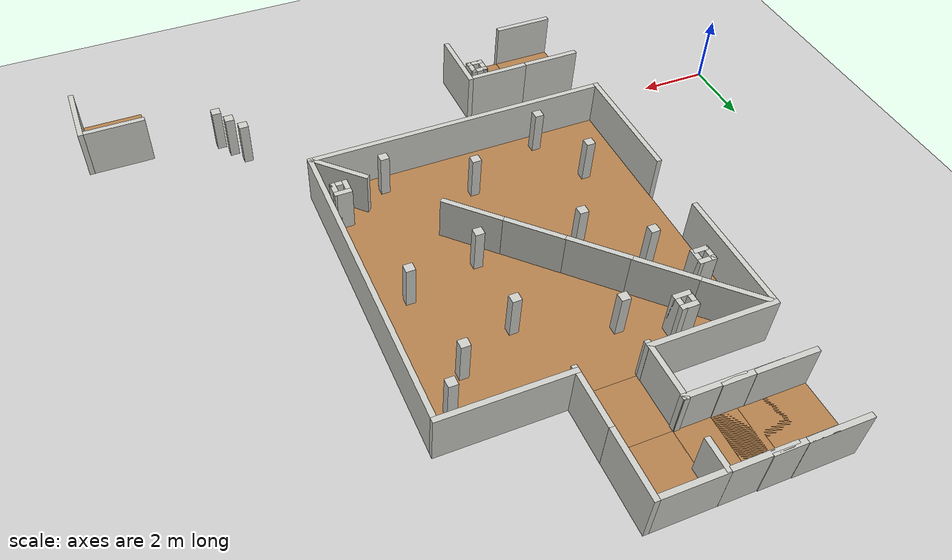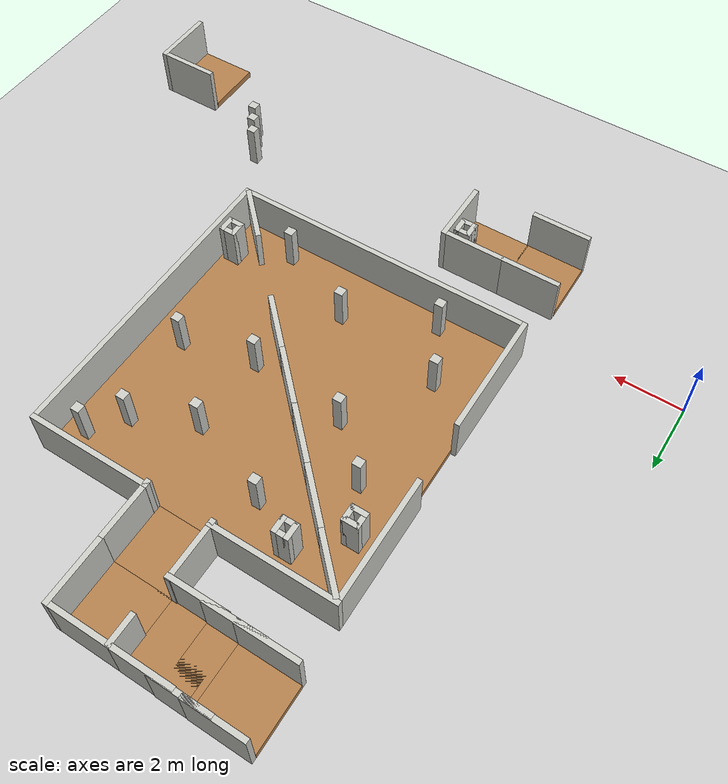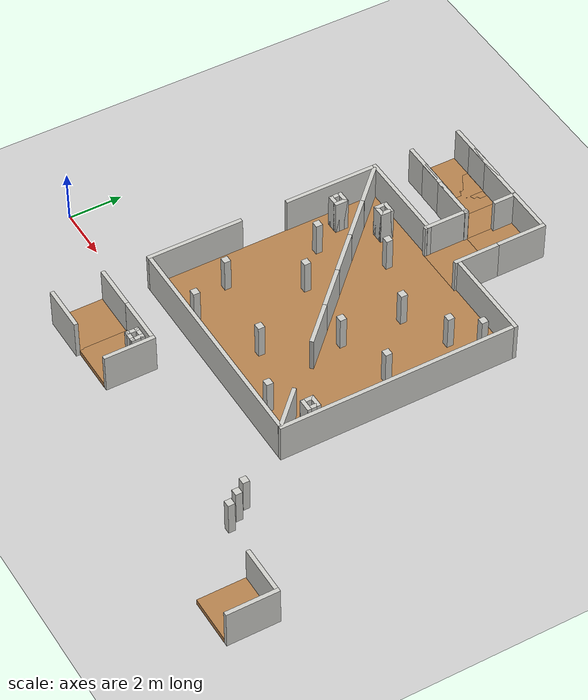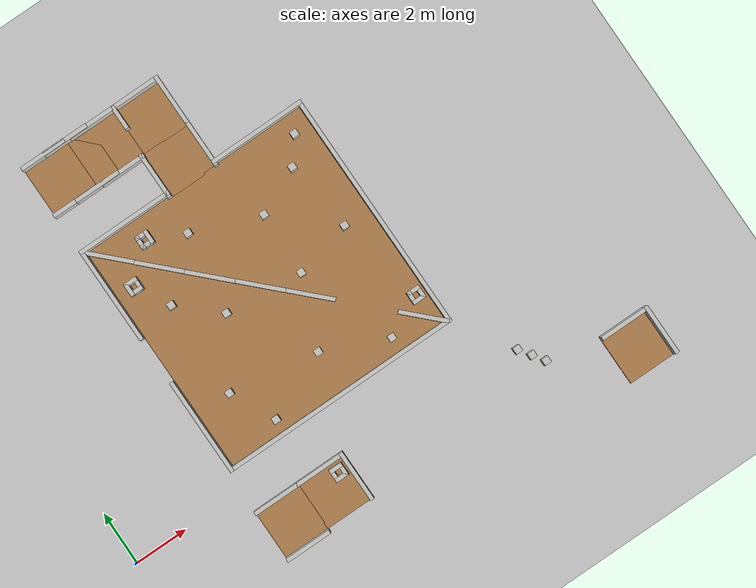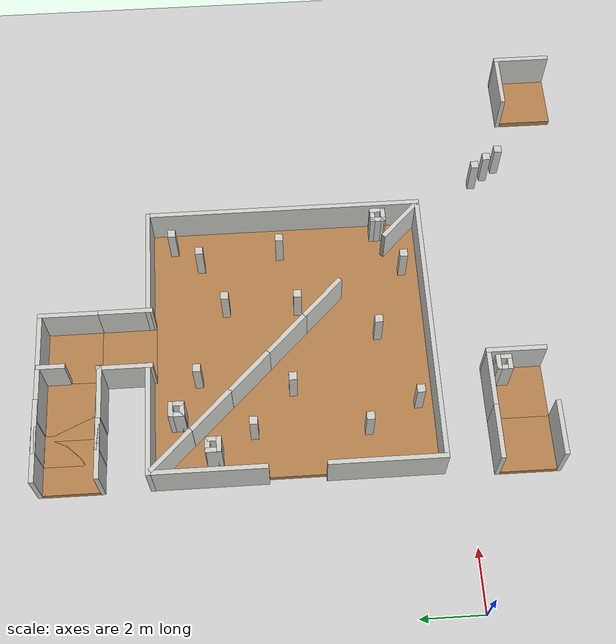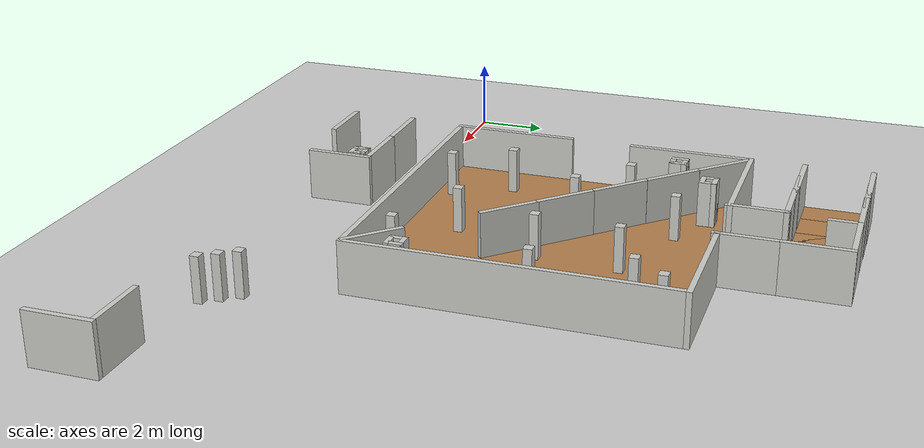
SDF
<sdf version="1.6">
 <world name="default">
  <model name="ground_plane">
   <static>1</static>
   <link name="link">
    <collision name="collision">
     <geometry><plane><normal>0 0 1</normal><size>100 100</size></plane></geometry>
     <surface><friction><ode><mu>100</mu><mu2>50</mu2></ode></friction></surface>
    </collision>
    <visual name="visual">
     <cast_shadows>0</cast_shadows>
     <geometry><plane><normal>0 0 1</normal><size>100 100</size></plane></geometry>
     <material>
      <script><uri>file://media/materials/scripts/gazebo.material</uri><name>Gazebo/Grey</name></script>
     </material>
    </visual>
   </link>
  </model>
  <model name="nerve_corner_clone_clone_clone_clone_clone_0">
   <pose>6.94042 -1.74971 0 0 0 -1.57079</pose>
   <link name="Wall_0">
    <collision name="Wall_0_Collision">
     <geometry><box><size>1.76 1.75 0.2</size></box></geometry>
     <pose>0 0 0.1 0 -0 0</pose>
    </collision>
    <visual name="Wall_0_Visual">
     <pose>0 0 0.1 0 -0 0</pose>
     <geometry><box><size>1.76 1.75 0.2</size></box></geometry>
     <material>
      <script><uri>file://media/materials/scripts/gazebo.material</uri><name>Gazebo/Wood</name></script>
      <ambient>1 0.764706 0.305882 1</ambient>
     </material>
    </visual>
    <pose>0.077507 -0.077007 0 0 -0 3.14159</pose>
   </link>
   <link name="Wall_2">
    <collision name="Wall_2_Collision">
     <geometry><box><size>1.75 0.15 1.5</size></box></geometry>
     <pose>0 0 0.75 0 -0 0</pose>
    </collision>
    <visual name="Wall_2_Visual">
     <pose>0 0 0.75 0 -0 0</pose>
     <geometry><box><size>1.75 0.15 1.5</size></box></geometry>
     <material>
      <script><uri>file://media/materials/scripts/gazebo.material</uri><name>Gazebo/CeilingTiled</name></script>
      <ambient>1 0.764706 0.305882 1</ambient>
     </material>
    </visual>
    <pose>-0.882493 -0.073007 0 0 0 -1.5708</pose>
   </link>
   <link name="Wall_4">
    <collision name="Wall_4_Collision">
     <geometry><box><size>1.91042 0.15 1.5</size></box></geometry>
     <pose>0 0 0.75 0 -0 0</pose>
    </collision>
    <visual name="Wall_4_Visual">
     <pose>0 0 0.75 0 -0 0</pose>
     <geometry><box><size>1.91042 0.15 1.5</size></box></geometry>
     <material>
      <script><uri>file://media/materials/scripts/gazebo.material</uri><name>Gazebo/CeilingTiled</name></script>
      <ambient>1 0.764706 0.305882 1</ambient>
     </material>
    </visual>
    <pose>-0.002284 0.876825 0 0 -0 3.1414</pose>
   </link>
   <static>1</static>
  </model>
  <model name="nerve_straight_clone_0_clone_0_clone_1_clone_0">
   <pose>5.14668 -1.82337 0 0 0 -1.5708</pose>
   <link name="Wall_0">
    <collision name="Wall_0_Collision">
     <geometry><box><size>1.76 1.75 0.2</size></box></geometry>
     <pose>0 0 0.1 0 -0 0</pose>
    </collision>
    <visual name="Wall_0_Visual">
     <pose>0 0 0.1 0 -0 0</pose>
     <geometry><box><size>1.76 1.75 0.2</size></box></geometry>
     <material>
      <script><uri>file://media/materials/scripts/gazebo.material</uri><name>Gazebo/Wood</name></script>
      <ambient>1 0.764706 0.305882 1</ambient>
     </material>
    </visual>
    <pose>0.005 -0.002 0 0 -0 3.14159</pose>
   </link>
   <link name="Wall_2">
    <collision name="Wall_2_Collision">
     <geometry><box><size>1.75 0.15 1.5</size></box></geometry>
     <pose>0 0 0.75 0 -0 0</pose>
    </collision>
    <visual name="Wall_2_Visual">
     <pose>0 0 0.75 0 -0 0</pose>
     <geometry><box><size>1.75 0.15 1.5</size></box></geometry>
     <material>
      <script><uri>file://media/materials/scripts/gazebo.material</uri><name>Gazebo/CeilingTiled</name></script>
      <ambient>1 0.764706 0.305882 1</ambient>
     </material>
    </visual>
    <pose>-0.955 0.002 0 0 0 -1.5708</pose>
   </link>
   <link name="Wall_4">
    <collision name="Wall_4_Collision">
     <geometry><box><size>1.75 0.15 1.5</size></box></geometry>
     <pose>0 0 0.75 0 -0 0</pose>
    </collision>
    <visual name="Wall_4_Visual">
     <pose>0 0 0.75 0 -0 0</pose>
     <geometry><box><size>1.75 0.15 1.5</size></box></geometry>
     <material>
      <script><uri>file://media/materials/scripts/gazebo.material</uri><name>Gazebo/CeilingTiled</name></script>
      <ambient>1 0.764706 0.305882 1</ambient>
     </material>
    </visual>
    <pose>0.955 0.002 0 0 0 -1.5708</pose>
   </link>
   <static>1</static>
  </model>
  <model name="nerve_corner_clone_clone_1_clone_clone">
   <pose>18.2036 -3.50554 0 0 0 -1.57079</pose>
   <link name="Wall_0">
    <collision name="Wall_0_Collision">
     <geometry><box><size>1.76 1.75 0.2</size></box></geometry>
     <pose>0 0 0.1 0 -0 0</pose>
    </collision>
    <visual name="Wall_0_Visual">
     <pose>0 0 0.1 0 -0 0</pose>
     <geometry><box><size>1.76 1.75 0.2</size></box></geometry>
     <material>
      <script><uri>file://media/materials/scripts/gazebo.material</uri><name>Gazebo/Wood</name></script>
      <ambient>1 0.764706 0.305882 1</ambient>
     </material>
    </visual>
    <pose>0.077507 -0.077007 0 0 -0 3.14159</pose>
   </link>
   <link name="Wall_2">
    <collision name="Wall_2_Collision">
     <geometry><box><size>1.75 0.15 1.5</size></box></geometry>
     <pose>0 0 0.75 0 -0 0</pose>
    </collision>
    <visual name="Wall_2_Visual">
     <pose>0 0 0.75 0 -0 0</pose>
     <geometry><box><size>1.75 0.15 1.5</size></box></geometry>
     <material>
      <script><uri>file://media/materials/scripts/gazebo.material</uri><name>Gazebo/CeilingTiled</name></script>
      <ambient>1 0.764706 0.305882 1</ambient>
     </material>
    </visual>
    <pose>-0.882493 -0.073007 0 0 0 -1.5708</pose>
   </link>
   <link name="Wall_4">
    <collision name="Wall_4_Collision">
     <geometry><box><size>1.91042 0.15 1.5</size></box></geometry>
     <pose>0 0 0.75 0 -0 0</pose>
    </collision>
    <visual name="Wall_4_Visual">
     <pose>0 0 0.75 0 -0 0</pose>
     <geometry><box><size>1.91042 0.15 1.5</size></box></geometry>
     <material>
      <script><uri>file://media/materials/scripts/gazebo.material</uri><name>Gazebo/CeilingTiled</name></script>
      <ambient>1 0.764706 0.305882 1</ambient>
     </material>
    </visual>
    <pose>-0.002284 0.876825 0 0 -0 3.1414</pose>
   </link>
   <static>1</static>
  </model>
  <model name="nerve_room_5x5ARENA_right_clone">
   <pose>8.91265 5.25697 0 0 0 -1.57</pose>
   <link name="Wall_11">
    <collision name="Wall_11_Collision">
     <geometry><box><size>8.75 0.15 1.5</size></box></geometry>
     <pose>0 0 0.75 0 -0 0</pose>
    </collision>
    <visual name="Wall_11_Visual">
     <pose>0 0 0.75 0 -0 0</pose>
     <geometry><box><size>8.75 0.15 1.5</size></box></geometry>
     <material>
      <script><uri>file://media/materials/scripts/gazebo.material</uri><name>Gazebo/CeilingTiled</name></script>
      <ambient>1 0.764706 0.305882 1</ambient>
     </material>
    </visual>
    <pose>4.44912 -0.000431 0 0 0 -1.5708</pose>
   </link>
   <link name="Wall_13">
    <collision name="Wall_13_Collision">
     <geometry><box><size>3.65 0.15 1.5</size></box></geometry>
     <pose>0 0 0.75 0 -0 0</pose>
    </collision>
    <visual name="Wall_13_Visual">
     <pose>0 0 0.75 0 -0 0</pose>
     <geometry><box><size>3.65 0.15 1.5</size></box></geometry>
     <material>
      <script><uri>file://media/materials/scripts/gazebo.material</uri><name>Gazebo/CeilingTiled</name></script>
      <ambient>1 0.764706 0.305882 1</ambient>
     </material>
    </visual>
    <pose>-4.44961 2.70076 0 0 0 -1.5708</pose>
   </link>
   <link name="Wall_15">
    <collision name="Wall_15_Collision">
     <geometry><box><size>3.65 0.15 1.5</size></box></geometry>
     <pose>0 0 0.75 0 -0 0</pose>
    </collision>
    <visual name="Wall_15_Visual">
     <pose>0 0 0.75 0 -0 0</pose>
     <geometry><box><size>3.65 0.15 1.5</size></box></geometry>
     <material>
      <script><uri>file://media/materials/scripts/gazebo.material</uri><name>Gazebo/CeilingTiled</name></script>
      <ambient>1 0.764706 0.305882 1</ambient>
     </material>
    </visual>
    <pose>2.69961 -4.45076 0 0 -0 0</pose>
   </link>
   <link name="Wall_17">
    <collision name="Wall_17_Collision">
     <geometry><box><size>8.90028 0.15 1.5</size></box></geometry>
     <pose>0 0 0.75 0 -0 0</pose>
    </collision>
    <visual name="Wall_17_Visual">
     <pose>0 0 0.75 0 -0 0</pose>
     <geometry><box><size>8.90028 0.15 1.5</size></box></geometry>
     <material>
      <script><uri>file://media/materials/scripts/gazebo.material</uri><name>Gazebo/CeilingTiled</name></script>
      <ambient>1 0.764706 0.305882 1</ambient>
     </material>
    </visual>
    <pose>0.074346 4.45022 0 0 0 -6.5e-05</pose>
   </link>
   <link name="Wall_21">
    <collision name="Wall_21_Collision">
     <geometry><box><size>3.5 0.15 1.5</size></box></geometry>
     <pose>0 0 0.75 0 -0 0</pose>
    </collision>
    <visual name="Wall_21_Visual">
     <pose>0 0 0.75 0 -0 0</pose>
     <geometry><box><size>3.5 0.15 1.5</size></box></geometry>
     <material>
      <script><uri>file://media/materials/scripts/gazebo.material</uri><name>Gazebo/CeilingTiled</name></script>
      <ambient>1 0.764706 0.305882 1</ambient>
     </material>
    </visual>
    <pose>-2.62383 -4.4498 0 0 -0 0</pose>
   </link>
   <link name="Wall_25">
    <collision name="Wall_25_Collision">
     <geometry><box><size>3.65 0.15 1.5</size></box></geometry>
     <pose>0 0 0.75 0 -0 0</pose>
    </collision>
    <visual name="Wall_25_Visual">
     <pose>0 0 0.75 0 -0 0</pose>
     <geometry><box><size>3.65 0.15 1.5</size></box></geometry>
     <material>
      <script><uri>file://media/materials/scripts/gazebo.material</uri><name>Gazebo/CeilingTiled</name></script>
      <ambient>1 0.764706 0.305882 1</ambient>
     </material>
    </visual>
    <pose>-4.44941 -2.70044 0 0 0 -1.5708</pose>
   </link>
   <link name="Wall_6">
    <collision name="Wall_6_Collision">
     <geometry><box><size>8.76 8.75 0.2</size></box></geometry>
     <pose>0 0 0.1 0 -0 0</pose>
    </collision>
    <visual name="Wall_6_Visual">
     <pose>0 0 0.1 0 -0 0</pose>
     <geometry><box><size>8.76 8.75 0.2</size></box></geometry>
     <material>
      <script><uri>file://media/materials/scripts/gazebo.material</uri><name>Gazebo/Wood</name></script>
      <ambient>1 0.764706 0.305882 1</ambient>
     </material>
    </visual>
    <pose>0.000485 -0.004173 0 0 -0 1.5708</pose>
   </link>
   <static>1</static>
  </model>
  <model name="nerve_straight_clone_0_clone_0_clone_clone_0">
   <pose>5.24117 12.19 0 0 0 -1.5708</pose>
   <link name="Wall_0">
    <collision name="Wall_0_Collision">
     <geometry><box><size>1.76 1.75 0.2</size></box></geometry>
     <pose>0 0 0.1 0 -0 0</pose>
    </collision>
    <visual name="Wall_0_Visual">
     <pose>0 0 0.1 0 -0 0</pose>
     <geometry><box><size>1.76 1.75 0.2</size></box></geometry>
     <material>
      <script><uri>file://media/materials/scripts/gazebo.material</uri><name>Gazebo/Wood</name></script>
      <ambient>1 0.764706 0.305882 1</ambient>
     </material>
    </visual>
    <pose>0.005 -0.002 0 0 -0 3.14159</pose>
   </link>
   <link name="Wall_2">
    <collision name="Wall_2_Collision">
     <geometry><box><size>1.75 0.15 1.5</size></box></geometry>
     <pose>0 0 0.75 0 -0 0</pose>
    </collision>
    <visual name="Wall_2_Visual">
     <pose>0 0 0.75 0 -0 0</pose>
     <geometry><box><size>1.75 0.15 1.5</size></box></geometry>
     <material>
      <script><uri>file://media/materials/scripts/gazebo.material</uri><name>Gazebo/CeilingTiled</name></script>
      <ambient>1 0.764706 0.305882 1</ambient>
     </material>
    </visual>
    <pose>-0.955 0.002 0 0 0 -1.5708</pose>
   </link>
   <link name="Wall_4">
    <collision name="Wall_4_Collision">
     <geometry><box><size>1.75 0.15 1.5</size></box></geometry>
     <pose>0 0 0.75 0 -0 0</pose>
    </collision>
    <visual name="Wall_4_Visual">
     <pose>0 0 0.75 0 -0 0</pose>
     <geometry><box><size>1.75 0.15 1.5</size></box></geometry>
     <material>
      <script><uri>file://media/materials/scripts/gazebo.material</uri><name>Gazebo/CeilingTiled</name></script>
      <ambient>1 0.764706 0.305882 1</ambient>
     </material>
    </visual>
    <pose>0.955 0.002 0 0 0 -1.5708</pose>
   </link>
   <static>1</static>
  </model>
  <model name="nerve_straight_clone_0_clone_0_clone_clone_0_clone">
   <pose>7.16906 12.1637 0 0 0 -1.5708</pose>
   <link name="Wall_0">
    <collision name="Wall_0_Collision">
     <geometry><box><size>1.76 1.75 0.2</size></box></geometry>
     <pose>0 0 0.1 0 -0 0</pose>
    </collision>
    <visual name="Wall_0_Visual">
     <pose>0 0 0.1 0 -0 0</pose>
     <geometry><box><size>1.76 1.75 0.2</size></box></geometry>
     <material>
      <script><uri>file://media/materials/scripts/gazebo.material</uri><name>Gazebo/Wood</name></script>
      <ambient>1 0.764706 0.305882 1</ambient>
     </material>
    </visual>
    <pose>0.005 -0.002 0 0 -0 3.14159</pose>
   </link>
   <link name="Wall_2">
    <collision name="Wall_2_Collision">
     <geometry><box><size>1.75 0.15 1.5</size></box></geometry>
     <pose>0 0 0.75 0 -0 0</pose>
    </collision>
    <visual name="Wall_2_Visual">
     <pose>0 0 0.75 0 -0 0</pose>
     <geometry><box><size>1.75 0.15 1.5</size></box></geometry>
     <material>
      <script><uri>file://media/materials/scripts/gazebo.material</uri><name>Gazebo/CeilingTiled</name></script>
      <ambient>1 0.764706 0.305882 1</ambient>
     </material>
    </visual>
    <pose>-0.955 0.002 0 0 0 -1.5708</pose>
   </link>
   <link name="Wall_4">
    <collision name="Wall_4_Collision">
     <geometry><box><size>1.75 0.15 1.5</size></box></geometry>
     <pose>0 0 0.75 0 -0 0</pose>
    </collision>
    <visual name="Wall_4_Visual">
     <pose>0 0 0.75 0 -0 0</pose>
     <geometry><box><size>1.75 0.15 1.5</size></box></geometry>
     <material>
      <script><uri>file://media/materials/scripts/gazebo.material</uri><name>Gazebo/CeilingTiled</name></script>
      <ambient>1 0.764706 0.305882 1</ambient>
     </material>
    </visual>
    <pose>0.955 0.002 0 0 0 -1.5708</pose>
   </link>
   <static>1</static>
  </model>
  <model name="nerve_corner_clone_0_clone_clone_0_clone">
   <pose>8.98251 12.2346 0 0 0 -1.5708</pose>
   <link name="Wall_0">
    <collision name="Wall_0_Collision">
     <geometry><box><size>1.76 1.75 0.2</size></box></geometry>
     <pose>0 0 0.1 0 -0 0</pose>
    </collision>
    <visual name="Wall_0_Visual">
     <pose>0 0 0.1 0 -0 0</pose>
     <geometry><box><size>1.76 1.75 0.2</size></box></geometry>
     <material>
      <script><uri>file://media/materials/scripts/gazebo.material</uri><name>Gazebo/Wood</name></script>
      <ambient>1 0.764706 0.305882 1</ambient>
     </material>
    </visual>
    <pose>0.077507 -0.077007 0 0 -0 3.14159</pose>
   </link>
   <link name="Wall_2">
    <collision name="Wall_2_Collision">
     <geometry><box><size>1.75 0.15 1.5</size></box></geometry>
     <pose>0 0 0.75 0 -0 0</pose>
    </collision>
    <visual name="Wall_2_Visual">
     <pose>0 0 0.75 0 -0 0</pose>
     <geometry><box><size>1.75 0.15 1.5</size></box></geometry>
     <material>
      <script><uri>file://media/materials/scripts/gazebo.material</uri><name>Gazebo/CeilingTiled</name></script>
      <ambient>1 0.764706 0.305882 1</ambient>
     </material>
    </visual>
    <pose>-0.882493 -0.073007 0 0 0 -1.5708</pose>
   </link>
   <link name="Wall_4">
    <collision name="Wall_4_Collision">
     <geometry><box><size>1.91042 0.15 1.5</size></box></geometry>
     <pose>0 0 0.75 0 -0 0</pose>
    </collision>
    <visual name="Wall_4_Visual">
     <pose>0 0 0.75 0 -0 0</pose>
     <geometry><box><size>1.91042 0.15 1.5</size></box></geometry>
     <material>
      <script><uri>file://media/materials/scripts/gazebo.material</uri><name>Gazebo/CeilingTiled</name></script>
      <ambient>1 0.764706 0.305882 1</ambient>
     </material>
    </visual>
    <pose>-0.002284 0.876825 0 0 -0 3.1414</pose>
   </link>
   <static>1</static>
  </model>
  <model name="nerve_straight_clone_0_clone_0_clone_clone_0_clone_clone">
   <pose>8.90752 10.4299 0 0 -0 3.14159</pose>
   <link name="Wall_0">
    <collision name="Wall_0_Collision">
     <geometry><box><size>1.76 1.75 0.2</size></box></geometry>
     <pose>0 0 0.1 0 -0 0</pose>
    </collision>
    <visual name="Wall_0_Visual">
     <pose>0 0 0.1 0 -0 0</pose>
     <geometry><box><size>1.76 1.75 0.2</size></box></geometry>
     <material>
      <script><uri>file://media/materials/scripts/gazebo.material</uri><name>Gazebo/Wood</name></script>
      <ambient>1 0.764706 0.305882 1</ambient>
     </material>
    </visual>
    <pose>0.005 -0.002 0 0 -0 3.14159</pose>
   </link>
   <link name="Wall_2">
    <collision name="Wall_2_Collision">
     <geometry><box><size>1.75 0.15 1.5</size></box></geometry>
     <pose>0 0 0.75 0 -0 0</pose>
    </collision>
    <visual name="Wall_2_Visual">
     <pose>0 0 0.75 0 -0 0</pose>
     <geometry><box><size>1.75 0.15 1.5</size></box></geometry>
     <material>
      <script><uri>file://media/materials/scripts/gazebo.material</uri><name>Gazebo/CeilingTiled</name></script>
      <ambient>1 0.764706 0.305882 1</ambient>
     </material>
    </visual>
    <pose>-0.955 0.002 0 0 0 -1.5708</pose>
   </link>
   <link name="Wall_4">
    <collision name="Wall_4_Collision">
     <geometry><box><size>1.75 0.15 1.5</size></box></geometry>
     <pose>0 0 0.75 0 -0 0</pose>
    </collision>
    <visual name="Wall_4_Visual">
     <pose>0 0 0.75 0 -0 0</pose>
     <geometry><box><size>1.75 0.15 1.5</size></box></geometry>
     <material>
      <script><uri>file://media/materials/scripts/gazebo.material</uri><name>Gazebo/CeilingTiled</name></script>
      <ambient>1 0.764706 0.305882 1</ambient>
     </material>
    </visual>
    <pose>0.955 0.002 0 0 0 -1.5708</pose>
   </link>
   <static>1</static>
  </model>
  <model name="nerve_straight_clone_0_clone_0_clone_clone_0_clone_0">
   <pose>6.14334 12.1816 0 0 0 -1.5708</pose>
   <link name="Wall_0">
    <collision name="Wall_0_Collision">
     <geometry><box><size>1.76 1.75 0.2</size></box></geometry>
     <pose>0 0 0.1 0 -0 0</pose>
    </collision>
    <visual name="Wall_0_Visual">
     <pose>0 0 0.1 0 -0 0</pose>
     <geometry><box><size>1.76 1.75 0.2</size></box></geometry>
     <material>
      <script><uri>file://media/materials/scripts/gazebo.material</uri><name>Gazebo/Wood</name></script>
      <ambient>1 0.764706 0.305882 1</ambient>
     </material>
    </visual>
    <pose>0.005 -0.002 0 0 -0 3.14159</pose>
   </link>
   <link name="Wall_2">
    <collision name="Wall_2_Collision">
     <geometry><box><size>1.75 0.15 1.5</size></box></geometry>
     <pose>0 0 0.75 0 -0 0</pose>
    </collision>
    <visual name="Wall_2_Visual">
     <pose>0 0 0.75 0 -0 0</pose>
     <geometry><box><size>1.75 0.15 1.5</size></box></geometry>
     <material>
      <script><uri>file://media/materials/scripts/gazebo.material</uri><name>Gazebo/CeilingTiled</name></script>
      <ambient>1 0.764706 0.305882 1</ambient>
     </material>
    </visual>
    <pose>-0.955 0.002 0 0 0 -1.5708</pose>
   </link>
   <link name="Wall_4">
    <collision name="Wall_4_Collision">
     <geometry><box><size>1.75 0.15 1.5</size></box></geometry>
     <pose>0 0 0.75 0 -0 0</pose>
    </collision>
    <visual name="Wall_4_Visual">
     <pose>0 0 0.75 0 -0 0</pose>
     <geometry><box><size>1.75 0.15 1.5</size></box></geometry>
     <material>
      <script><uri>file://media/materials/scripts/gazebo.material</uri><name>Gazebo/CeilingTiled</name></script>
      <ambient>1 0.764706 0.305882 1</ambient>
     </material>
    </visual>
    <pose>0.955 0.002 0 0 0 -1.5708</pose>
   </link>
   <static>1</static>
  </model>
  <model name="nerve_obs_wall_full">
   <pose>5.12733 9.03491 0.2 0 0 -0.785398</pose>
   <link name="Wall_21">
    <collision name="Wall_21_Collision">
     <geometry><box><size>1.75 0.15 1.3</size></box></geometry>
     <pose>0 0 0.65 0 -0 0</pose>
    </collision>
    <visual name="Wall_21_Visual">
     <pose>0 0 0.65 0 -0 0</pose>
     <geometry><box><size>1.75 0.15 1.3</size></box></geometry>
     <material>
      <script><uri>file://media/materials/scripts/gazebo.material</uri><name>Gazebo/CeilingTiled</name></script>
      <ambient>1 0.764706 0.305882 1</ambient>
     </material>
    </visual>
   </link>
   <static>1</static>
  </model>
  <model name="nerve_obs_wall_full_clone">
   <pose>6.34618 7.80728 0.2 0 0 -0.785398</pose>
   <link name="Wall_21">
    <collision name="Wall_21_Collision">
     <geometry><box><size>1.75 0.15 1.3</size></box></geometry>
     <pose>0 0 0.65 0 -0 0</pose>
    </collision>
    <visual name="Wall_21_Visual">
     <pose>0 0 0.65 0 -0 0</pose>
     <geometry><box><size>1.75 0.15 1.3</size></box></geometry>
     <material>
      <script><uri>file://media/materials/scripts/gazebo.material</uri><name>Gazebo/CeilingTiled</name></script>
      <ambient>1 0.764706 0.305882 1</ambient>
     </material>
    </visual>
   </link>
   <static>1</static>
  </model>
  <model name="nerve_obs_wall_full_clone_0">
   <pose>7.55858 6.58944 0.2 0 0 -0.785398</pose>
   <link name="Wall_21">
    <collision name="Wall_21_Collision">
     <geometry><box><size>1.75 0.15 1.3</size></box></geometry>
     <pose>0 0 0.65 0 -0 0</pose>
    </collision>
    <visual name="Wall_21_Visual">
     <pose>0 0 0.65 0 -0 0</pose>
     <geometry><box><size>1.75 0.15 1.3</size></box></geometry>
     <material>
      <script><uri>file://media/materials/scripts/gazebo.material</uri><name>Gazebo/CeilingTiled</name></script>
      <ambient>1 0.764706 0.305882 1</ambient>
     </material>
    </visual>
   </link>
   <static>1</static>
  </model>
  <model name="nerve_obs_wall_full_clone_1">
   <pose>8.78382 5.36977 0.2 0 0 -0.785398</pose>
   <link name="Wall_21">
    <collision name="Wall_21_Collision">
     <geometry><box><size>1.75 0.15 1.3</size></box></geometry>
     <pose>0 0 0.65 0 -0 0</pose>
    </collision>
    <visual name="Wall_21_Visual">
     <pose>0 0 0.65 0 -0 0</pose>
     <geometry><box><size>1.75 0.15 1.3</size></box></geometry>
     <material>
      <script><uri>file://media/materials/scripts/gazebo.material</uri><name>Gazebo/CeilingTiled</name></script>
      <ambient>1 0.764706 0.305882 1</ambient>
     </material>
    </visual>
   </link>
   <static>1</static>
  </model>
  <model name="nerve_obs_wall_full_clone_2">
   <pose>9.99325 4.16584 0.2 0 0 -0.785398</pose>
   <link name="Wall_21">
    <collision name="Wall_21_Collision">
     <geometry><box><size>1.75 0.15 1.3</size></box></geometry>
     <pose>0 0 0.65 0 -0 0</pose>
    </collision>
    <visual name="Wall_21_Visual">
     <pose>0 0 0.65 0 -0 0</pose>
     <geometry><box><size>1.75 0.15 1.3</size></box></geometry>
     <material>
      <script><uri>file://media/materials/scripts/gazebo.material</uri><name>Gazebo/CeilingTiled</name></script>
      <ambient>1 0.764706 0.305882 1</ambient>
     </material>
    </visual>
   </link>
   <static>1</static>
  </model>
  <model name="nerve_obs_wall_full_clone_3">
   <pose>12.7303 1.40382 0.2 0 0 -0.785398</pose>
   <link name="Wall_21">
    <collision name="Wall_21_Collision">
     <geometry><box><size>1.75 0.15 1.3</size></box></geometry>
     <pose>0 0 0.65 0 -0 0</pose>
    </collision>
    <visual name="Wall_21_Visual">
     <pose>0 0 0.65 0 -0 0</pose>
     <geometry><box><size>1.75 0.15 1.3</size></box></geometry>
     <material>
      <script><uri>file://media/materials/scripts/gazebo.material</uri><name>Gazebo/CeilingTiled</name></script>
      <ambient>1 0.764706 0.305882 1</ambient>
     </material>
    </visual>
   </link>
   <static>1</static>
  </model>
  <model name="nerve_obs_squarepillar_large_clone_33">
   <pose>5.24045 7.76111 0.2 0 -0 0</pose>
   <link name="Wall_31">
    <collision name="Wall_31_Collision">
     <geometry><box><size>0.5 0.15 1.3</size></box></geometry>
     <pose>0 0 0.65 0 -0 0</pose>
    </collision>
    <visual name="Wall_31_Visual">
     <pose>0 0 0.65 0 -0 0</pose>
     <geometry><box><size>0.5 0.15 1.3</size></box></geometry>
     <material>
      <script><uri>file://media/materials/scripts/gazebo.material</uri><name>Gazebo/CeilingTiled</name></script>
      <ambient>1 0.764706 0.305882 1</ambient>
     </material>
    </visual>
    <pose>-0.175 0 0 0 0 -1.5708</pose>
   </link>
   <link name="Wall_32">
    <collision name="Wall_32_Collision">
     <geometry><box><size>0.5 0.15 1.3</size></box></geometry>
     <pose>0 0 0.65 0 -0 0</pose>
    </collision>
    <visual name="Wall_32_Visual">
     <pose>0 0 0.65 0 -0 0</pose>
     <geometry><box><size>0.5 0.15 1.3</size></box></geometry>
     <material>
      <script><uri>file://media/materials/scripts/gazebo.material</uri><name>Gazebo/CeilingTiled</name></script>
      <ambient>1 0.764706 0.305882 1</ambient>
     </material>
    </visual>
    <pose>0 -0.175 0 0 -0 0</pose>
   </link>
   <link name="Wall_33">
    <collision name="Wall_33_Collision">
     <geometry><box><size>0.5 0.15 1.3</size></box></geometry>
     <pose>0 0 0.65 0 -0 0</pose>
    </collision>
    <visual name="Wall_33_Visual">
     <pose>0 0 0.65 0 -0 0</pose>
     <geometry><box><size>0.5 0.15 1.3</size></box></geometry>
     <material>
      <script><uri>file://media/materials/scripts/gazebo.material</uri><name>Gazebo/CeilingTiled</name></script>
      <ambient>1 0.764706 0.305882 1</ambient>
     </material>
    </visual>
    <pose>0.175 0 0 0 -0 1.5708</pose>
   </link>
   <link name="Wall_34">
    <collision name="Wall_34_Collision">
     <geometry><box><size>0.5 0.15 1.3</size></box></geometry>
     <pose>0 0 0.65 0 -0 0</pose>
    </collision>
    <visual name="Wall_34_Visual">
     <pose>0 0 0.65 0 -0 0</pose>
     <geometry><box><size>0.5 0.15 1.3</size></box></geometry>
     <material>
      <script><uri>file://media/materials/scripts/gazebo.material</uri><name>Gazebo/CeilingTiled</name></script>
      <ambient>1 0.764706 0.305882 1</ambient>
     </material>
    </visual>
    <pose>0 0.175 0 0 -0 3.14159</pose>
   </link>
   <static>1</static>
  </model>
  <model name="nerve_obs_squarepillar_large_clone_34">
   <pose>6.44236 8.85207 0.2 0 -0 0</pose>
   <link name="Wall_31">
    <collision name="Wall_31_Collision">
     <geometry><box><size>0.5 0.15 1.3</size></box></geometry>
     <pose>0 0 0.65 0 -0 0</pose>
    </collision>
    <visual name="Wall_31_Visual">
     <pose>0 0 0.65 0 -0 0</pose>
     <geometry><box><size>0.5 0.15 1.3</size></box></geometry>
     <material>
      <script><uri>file://media/materials/scripts/gazebo.material</uri><name>Gazebo/CeilingTiled</name></script>
      <ambient>1 0.764706 0.305882 1</ambient>
     </material>
    </visual>
    <pose>-0.175 0 0 0 0 -1.5708</pose>
   </link>
   <link name="Wall_32">
    <collision name="Wall_32_Collision">
     <geometry><box><size>0.5 0.15 1.3</size></box></geometry>
     <pose>0 0 0.65 0 -0 0</pose>
    </collision>
    <visual name="Wall_32_Visual">
     <pose>0 0 0.65 0 -0 0</pose>
     <geometry><box><size>0.5 0.15 1.3</size></box></geometry>
     <material>
      <script><uri>file://media/materials/scripts/gazebo.material</uri><name>Gazebo/CeilingTiled</name></script>
      <ambient>1 0.764706 0.305882 1</ambient>
     </material>
    </visual>
    <pose>0 -0.175 0 0 -0 0</pose>
   </link>
   <link name="Wall_33">
    <collision name="Wall_33_Collision">
     <geometry><box><size>0.5 0.15 1.3</size></box></geometry>
     <pose>0 0 0.65 0 -0 0</pose>
    </collision>
    <visual name="Wall_33_Visual">
     <pose>0 0 0.65 0 -0 0</pose>
     <geometry><box><size>0.5 0.15 1.3</size></box></geometry>
     <material>
      <script><uri>file://media/materials/scripts/gazebo.material</uri><name>Gazebo/CeilingTiled</name></script>
      <ambient>1 0.764706 0.305882 1</ambient>
     </material>
    </visual>
    <pose>0.175 0 0 0 -0 1.5708</pose>
   </link>
   <link name="Wall_34">
    <collision name="Wall_34_Collision">
     <geometry><box><size>0.5 0.15 1.3</size></box></geometry>
     <pose>0 0 0.65 0 -0 0</pose>
    </collision>
    <visual name="Wall_34_Visual">
     <pose>0 0 0.65 0 -0 0</pose>
     <geometry><box><size>0.5 0.15 1.3</size></box></geometry>
     <material>
      <script><uri>file://media/materials/scripts/gazebo.material</uri><name>Gazebo/CeilingTiled</name></script>
      <ambient>1 0.764706 0.305882 1</ambient>
     </material>
    </visual>
    <pose>0 0.175 0 0 -0 3.14159</pose>
   </link>
   <static>1</static>
  </model>
  <model name="nerve_obs_squarepillar_large_clone_40">
   <pose>7.39521 -1.31454 0.2 0 -0 0</pose>
   <link name="Wall_31">
    <collision name="Wall_31_Collision">
     <geometry><box><size>0.5 0.15 1.3</size></box></geometry>
     <pose>0 0 0.65 0 -0 0</pose>
    </collision>
    <visual name="Wall_31_Visual">
     <pose>0 0 0.65 0 -0 0</pose>
     <geometry><box><size>0.5 0.15 1.3</size></box></geometry>
     <material>
      <script><uri>file://media/materials/scripts/gazebo.material</uri><name>Gazebo/CeilingTiled</name></script>
      <ambient>1 0.764706 0.305882 1</ambient>
     </material>
    </visual>
    <pose>-0.175 0 0 0 0 -1.5708</pose>
   </link>
   <link name="Wall_32">
    <collision name="Wall_32_Collision">
     <geometry><box><size>0.5 0.15 1.3</size></box></geometry>
     <pose>0 0 0.65 0 -0 0</pose>
    </collision>
    <visual name="Wall_32_Visual">
     <pose>0 0 0.65 0 -0 0</pose>
     <geometry><box><size>0.5 0.15 1.3</size></box></geometry>
     <material>
      <script><uri>file://media/materials/scripts/gazebo.material</uri><name>Gazebo/CeilingTiled</name></script>
      <ambient>1 0.764706 0.305882 1</ambient>
     </material>
    </visual>
    <pose>0 -0.175 0 0 -0 0</pose>
   </link>
   <link name="Wall_33">
    <collision name="Wall_33_Collision">
     <geometry><box><size>0.5 0.15 1.3</size></box></geometry>
     <pose>0 0 0.65 0 -0 0</pose>
    </collision>
    <visual name="Wall_33_Visual">
     <pose>0 0 0.65 0 -0 0</pose>
     <geometry><box><size>0.5 0.15 1.3</size></box></geometry>
     <material>
      <script><uri>file://media/materials/scripts/gazebo.material</uri><name>Gazebo/CeilingTiled</name></script>
      <ambient>1 0.764706 0.305882 1</ambient>
     </material>
    </visual>
    <pose>0.175 0 0 0 -0 1.5708</pose>
   </link>
   <link name="Wall_34">
    <collision name="Wall_34_Collision">
     <geometry><box><size>0.5 0.15 1.3</size></box></geometry>
     <pose>0 0 0.65 0 -0 0</pose>
    </collision>
    <visual name="Wall_34_Visual">
     <pose>0 0 0.65 0 -0 0</pose>
     <geometry><box><size>0.5 0.15 1.3</size></box></geometry>
     <material>
      <script><uri>file://media/materials/scripts/gazebo.material</uri><name>Gazebo/CeilingTiled</name></script>
      <ambient>1 0.764706 0.305882 1</ambient>
     </material>
    </visual>
    <pose>0 0.175 0 0 -0 3.14159</pose>
   </link>
   <static>1</static>
  </model>
  <model name="nerve_obs_squarepillar_large_clone_43">
   <pose>12.9334 2.14275 0.2 0 -0 0</pose>
   <link name="Wall_31">
    <collision name="Wall_31_Collision">
     <geometry><box><size>0.5 0.15 1.3</size></box></geometry>
     <pose>0 0 0.65 0 -0 0</pose>
    </collision>
    <visual name="Wall_31_Visual">
     <pose>0 0 0.65 0 -0 0</pose>
     <geometry><box><size>0.5 0.15 1.3</size></box></geometry>
     <material>
      <script><uri>file://media/materials/scripts/gazebo.material</uri><name>Gazebo/CeilingTiled</name></script>
      <ambient>1 0.764706 0.305882 1</ambient>
     </material>
    </visual>
    <pose>-0.175 0 0 0 0 -1.5708</pose>
   </link>
   <link name="Wall_32">
    <collision name="Wall_32_Collision">
     <geometry><box><size>0.5 0.15 1.3</size></box></geometry>
     <pose>0 0 0.65 0 -0 0</pose>
    </collision>
    <visual name="Wall_32_Visual">
     <pose>0 0 0.65 0 -0 0</pose>
     <geometry><box><size>0.5 0.15 1.3</size></box></geometry>
     <material>
      <script><uri>file://media/materials/scripts/gazebo.material</uri><name>Gazebo/CeilingTiled</name></script>
      <ambient>1 0.764706 0.305882 1</ambient>
     </material>
    </visual>
    <pose>0 -0.175 0 0 -0 0</pose>
   </link>
   <link name="Wall_33">
    <collision name="Wall_33_Collision">
     <geometry><box><size>0.5 0.15 1.3</size></box></geometry>
     <pose>0 0 0.65 0 -0 0</pose>
    </collision>
    <visual name="Wall_33_Visual">
     <pose>0 0 0.65 0 -0 0</pose>
     <geometry><box><size>0.5 0.15 1.3</size></box></geometry>
     <material>
      <script><uri>file://media/materials/scripts/gazebo.material</uri><name>Gazebo/CeilingTiled</name></script>
      <ambient>1 0.764706 0.305882 1</ambient>
     </material>
    </visual>
    <pose>0.175 0 0 0 -0 1.5708</pose>
   </link>
   <link name="Wall_34">
    <collision name="Wall_34_Collision">
     <geometry><box><size>0.5 0.15 1.3</size></box></geometry>
     <pose>0 0 0.65 0 -0 0</pose>
    </collision>
    <visual name="Wall_34_Visual">
     <pose>0 0 0.65 0 -0 0</pose>
     <geometry><box><size>0.5 0.15 1.3</size></box></geometry>
     <material>
      <script><uri>file://media/materials/scripts/gazebo.material</uri><name>Gazebo/CeilingTiled</name></script>
      <ambient>1 0.764706 0.305882 1</ambient>
     </material>
    </visual>
    <pose>0 0.175 0 0 -0 3.14159</pose>
   </link>
   <static>1</static>
  </model>
  <model name="nerve_obs_squarepillar_small_clone_21">
   <pose>15.2917 -2.16733 0.2 0 -0 0</pose>
   <link name="Wall_40">
    <collision name="Wall_40_Collision">
     <geometry><box><size>0.26 0.25 1.3</size></box></geometry>
     <pose>0 0 0.65 0 -0 0</pose>
    </collision>
    <visual name="Wall_40_Visual">
     <pose>0 0 0.65 0 -0 0</pose>
     <geometry><box><size>0.26 0.25 1.3</size></box></geometry>
     <material>
      <script><uri>file://media/materials/scripts/gazebo.material</uri><name>Gazebo/CeilingTiled</name></script>
      <ambient>1 0.764706 0.305882 1</ambient>
     </material>
    </visual>
   </link>
   <static>1</static>
  </model>
  <model name="nerve_obs_squarepillar_small_clone_22">
   <pose>15.0102 -1.73744 0.2 0 -0 0</pose>
   <link name="Wall_40">
    <collision name="Wall_40_Collision">
     <geometry><box><size>0.26 0.25 1.3</size></box></geometry>
     <pose>0 0 0.65 0 -0 0</pose>
    </collision>
    <visual name="Wall_40_Visual">
     <pose>0 0 0.65 0 -0 0</pose>
     <geometry><box><size>0.26 0.25 1.3</size></box></geometry>
     <material>
      <script><uri>file://media/materials/scripts/gazebo.material</uri><name>Gazebo/CeilingTiled</name></script>
      <ambient>1 0.764706 0.305882 1</ambient>
     </material>
    </visual>
   </link>
   <static>1</static>
  </model>
  <model name="nerve_obs_squarepillar_small_clone_23">
   <pose>14.7077 -1.30678 0.2 0 -0 0</pose>
   <link name="Wall_40">
    <collision name="Wall_40_Collision">
     <geometry><box><size>0.26 0.25 1.3</size></box></geometry>
     <pose>0 0 0.65 0 -0 0</pose>
    </collision>
    <visual name="Wall_40_Visual">
     <pose>0 0 0.65 0 -0 0</pose>
     <geometry><box><size>0.26 0.25 1.3</size></box></geometry>
     <material>
      <script><uri>file://media/materials/scripts/gazebo.material</uri><name>Gazebo/CeilingTiled</name></script>
      <ambient>1 0.764706 0.305882 1</ambient>
     </material>
    </visual>
   </link>
   <static>1</static>
  </model>
  <model name="nerve_obs_squarepillar_small_clone_24">
   <pose>10.2358 7.27525 0.2 0 -0 0</pose>
   <link name="Wall_40">
    <collision name="Wall_40_Collision">
     <geometry><box><size>0.26 0.25 1.3</size></box></geometry>
     <pose>0 0 0.65 0 -0 0</pose>
    </collision>
    <visual name="Wall_40_Visual">
     <pose>0 0 0.65 0 -0 0</pose>
     <geometry><box><size>0.26 0.25 1.3</size></box></geometry>
     <material>
      <script><uri>file://media/materials/scripts/gazebo.material</uri><name>Gazebo/CeilingTiled</name></script>
      <ambient>1 0.764706 0.305882 1</ambient>
     </material>
    </visual>
   </link>
   <static>1</static>
  </model>
  <model name="nerve_obs_squarepillar_small_clone_25">
   <pose>11.9315 8.05783 0.2 0 -0 0</pose>
   <link name="Wall_40">
    <collision name="Wall_40_Collision">
     <geometry><box><size>0.26 0.25 1.3</size></box></geometry>
     <pose>0 0 0.65 0 -0 0</pose>
    </collision>
    <visual name="Wall_40_Visual">
     <pose>0 0 0.65 0 -0 0</pose>
     <geometry><box><size>0.26 0.25 1.3</size></box></geometry>
     <material>
      <script><uri>file://media/materials/scripts/gazebo.material</uri><name>Gazebo/CeilingTiled</name></script>
      <ambient>1 0.764706 0.305882 1</ambient>
     </material>
    </visual>
   </link>
   <static>1</static>
  </model>
  <model name="nerve_obs_squarepillar_small_clone_26">
   <pose>12.2675 5.43836 0.2 0 -0 0</pose>
   <link name="Wall_40">
    <collision name="Wall_40_Collision">
     <geometry><box><size>0.26 0.25 1.3</size></box></geometry>
     <pose>0 0 0.65 0 -0 0</pose>
    </collision>
    <visual name="Wall_40_Visual">
     <pose>0 0 0.65 0 -0 0</pose>
     <geometry><box><size>0.26 0.25 1.3</size></box></geometry>
     <material>
      <script><uri>file://media/materials/scripts/gazebo.material</uri><name>Gazebo/CeilingTiled</name></script>
      <ambient>1 0.764706 0.305882 1</ambient>
     </material>
    </visual>
   </link>
   <static>1</static>
  </model>
  <model name="nerve_obs_squarepillar_small_clone_27">
   <pose>7.77173 8.21153 0.2 0 -0 0</pose>
   <link name="Wall_40">
    <collision name="Wall_40_Collision">
     <geometry><box><size>0.26 0.25 1.3</size></box></geometry>
     <pose>0 0 0.65 0 -0 0</pose>
    </collision>
    <visual name="Wall_40_Visual">
     <pose>0 0 0.65 0 -0 0</pose>
     <geometry><box><size>0.26 0.25 1.3</size></box></geometry>
     <material>
      <script><uri>file://media/materials/scripts/gazebo.material</uri><name>Gazebo/CeilingTiled</name></script>
      <ambient>1 0.764706 0.305882 1</ambient>
     </material>
    </visual>
   </link>
   <static>1</static>
  </model>
  <model name="nerve_obs_squarepillar_small_clone_28">
   <pose>5.93043 6.52238 0.2 0 -0 0</pose>
   <link name="Wall_40">
    <collision name="Wall_40_Collision">
     <geometry><box><size>0.26 0.25 1.3</size></box></geometry>
     <pose>0 0 0.65 0 -0 0</pose>
    </collision>
    <visual name="Wall_40_Visual">
     <pose>0 0 0.65 0 -0 0</pose>
     <geometry><box><size>0.26 0.25 1.3</size></box></geometry>
     <material>
      <script><uri>file://media/materials/scripts/gazebo.material</uri><name>Gazebo/CeilingTiled</name></script>
      <ambient>1 0.764706 0.305882 1</ambient>
     </material>
    </visual>
   </link>
   <static>1</static>
  </model>
  <model name="nerve_obs_squarepillar_small_clone_29">
   <pose>5.87138 2.96891 0.2 0 -0 0</pose>
   <link name="Wall_40">
    <collision name="Wall_40_Collision">
     <geometry><box><size>0.26 0.25 1.3</size></box></geometry>
     <pose>0 0 0.65 0 -0 0</pose>
    </collision>
    <visual name="Wall_40_Visual">
     <pose>0 0 0.65 0 -0 0</pose>
     <geometry><box><size>0.26 0.25 1.3</size></box></geometry>
     <material>
      <script><uri>file://media/materials/scripts/gazebo.material</uri><name>Gazebo/CeilingTiled</name></script>
      <ambient>1 0.764706 0.305882 1</ambient>
     </material>
    </visual>
   </link>
   <static>1</static>
  </model>
  <model name="nerve_obs_squarepillar_small_clone_30">
   <pose>7.31634 5.25066 0.2 0 -0 0</pose>
   <link name="Wall_40">
    <collision name="Wall_40_Collision">
     <geometry><box><size>0.26 0.25 1.3</size></box></geometry>
     <pose>0 0 0.65 0 -0 0</pose>
    </collision>
    <visual name="Wall_40_Visual">
     <pose>0 0 0.65 0 -0 0</pose>
     <geometry><box><size>0.26 0.25 1.3</size></box></geometry>
     <material>
      <script><uri>file://media/materials/scripts/gazebo.material</uri><name>Gazebo/CeilingTiled</name></script>
      <ambient>1 0.764706 0.305882 1</ambient>
     </material>
    </visual>
   </link>
   <static>1</static>
  </model>
  <model name="nerve_obs_squarepillar_small_clone_31">
   <pose>9.12361 2.43186 0.2 0 -0 0</pose>
   <link name="Wall_40">
    <collision name="Wall_40_Collision">
     <geometry><box><size>0.26 0.25 1.3</size></box></geometry>
     <pose>0 0 0.65 0 -0 0</pose>
    </collision>
    <visual name="Wall_40_Visual">
     <pose>0 0 0.65 0 -0 0</pose>
     <geometry><box><size>0.26 0.25 1.3</size></box></geometry>
     <material>
      <script><uri>file://media/materials/scripts/gazebo.material</uri><name>Gazebo/CeilingTiled</name></script>
      <ambient>1 0.764706 0.305882 1</ambient>
     </material>
    </visual>
   </link>
   <static>1</static>
  </model>
  <model name="nerve_obs_squarepillar_small_clone_32">
   <pose>6.66691 1.34879 0.2 0 -0 0</pose>
   <link name="Wall_40">
    <collision name="Wall_40_Collision">
     <geometry><box><size>0.26 0.25 1.3</size></box></geometry>
     <pose>0 0 0.65 0 -0 0</pose>
    </collision>
    <visual name="Wall_40_Visual">
     <pose>0 0 0.65 0 -0 0</pose>
     <geometry><box><size>0.26 0.25 1.3</size></box></geometry>
     <material>
      <script><uri>file://media/materials/scripts/gazebo.material</uri><name>Gazebo/CeilingTiled</name></script>
      <ambient>1 0.764706 0.305882 1</ambient>
     </material>
    </visual>
   </link>
   <static>1</static>
  </model>
  <model name="nerve_obs_squarepillar_small_clone_34">
   <pose>12.6278 8.94239 0.2 0 -0 0</pose>
   <link name="Wall_40">
    <collision name="Wall_40_Collision">
     <geometry><box><size>0.26 0.25 1.3</size></box></geometry>
     <pose>0 0 0.65 0 -0 0</pose>
    </collision>
    <visual name="Wall_40_Visual">
     <pose>0 0 0.65 0 -0 0</pose>
     <geometry><box><size>0.26 0.25 1.3</size></box></geometry>
     <material>
      <script><uri>file://media/materials/scripts/gazebo.material</uri><name>Gazebo/CeilingTiled</name></script>
      <ambient>1 0.764706 0.305882 1</ambient>
     </material>
    </visual>
   </link>
   <static>1</static>
  </model>
  <model name="nerve_obs_squarepillar_small_clone_35">
   <pose>10.1663 4.95421 0.2 0 -0 0</pose>
   <link name="Wall_40">
    <collision name="Wall_40_Collision">
     <geometry><box><size>0.26 0.25 1.3</size></box></geometry>
     <pose>0 0 0.65 0 -0 0</pose>
    </collision>
    <visual name="Wall_40_Visual">
     <pose>0 0 0.65 0 -0 0</pose>
     <geometry><box><size>0.26 0.25 1.3</size></box></geometry>
     <material>
      <script><uri>file://media/materials/scripts/gazebo.material</uri><name>Gazebo/CeilingTiled</name></script>
      <ambient>1 0.764706 0.305882 1</ambient>
     </material>
    </visual>
   </link>
   <static>1</static>
  </model>
  <model name="nerve_obs_squarepillar_small_clone_36">
   <pose>11.4501 1.42042 0.2 0 -0 0</pose>
   <link name="Wall_40">
    <collision name="Wall_40_Collision">
     <geometry><box><size>0.26 0.25 1.3</size></box></geometry>
     <pose>0 0 0.65 0 -0 0</pose>
    </collision>
    <visual name="Wall_40_Visual">
     <pose>0 0 0.65 0 -0 0</pose>
     <geometry><box><size>0.26 0.25 1.3</size></box></geometry>
     <material>
      <script><uri>file://media/materials/scripts/gazebo.material</uri><name>Gazebo/CeilingTiled</name></script>
      <ambient>1 0.764706 0.305882 1</ambient>
     </material>
    </visual>
   </link>
   <static>1</static>
  </model>
  <model name="nerve_obs_wall_short_clone">
   <pose>8.08474 12.7203 0.2 0 0 -1.5708</pose>
   <link name="Wall_21">
    <collision name="Wall_21_Collision">
     <geometry><box><size>0.9 0.15 1.3</size></box></geometry>
     <pose>0 0 0.65 0 -0 0</pose>
    </collision>
    <visual name="Wall_21_Visual">
     <pose>0 0 0.65 0 -0 0</pose>
     <geometry><box><size>0.9 0.15 1.3</size></box></geometry>
     <material>
      <script><uri>file://media/materials/scripts/gazebo.material</uri><name>Gazebo/CeilingTiled</name></script>
      <ambient>1 0.764706 0.305882 1</ambient>
     </material>
    </visual>
   </link>
   <static>1</static>
  </model>
 </world>
</sdf>
